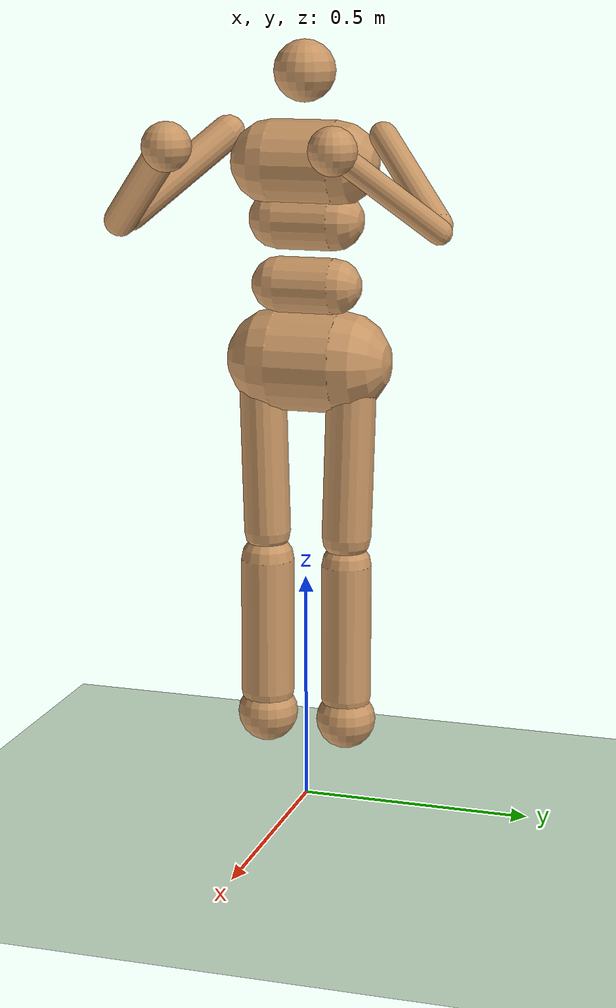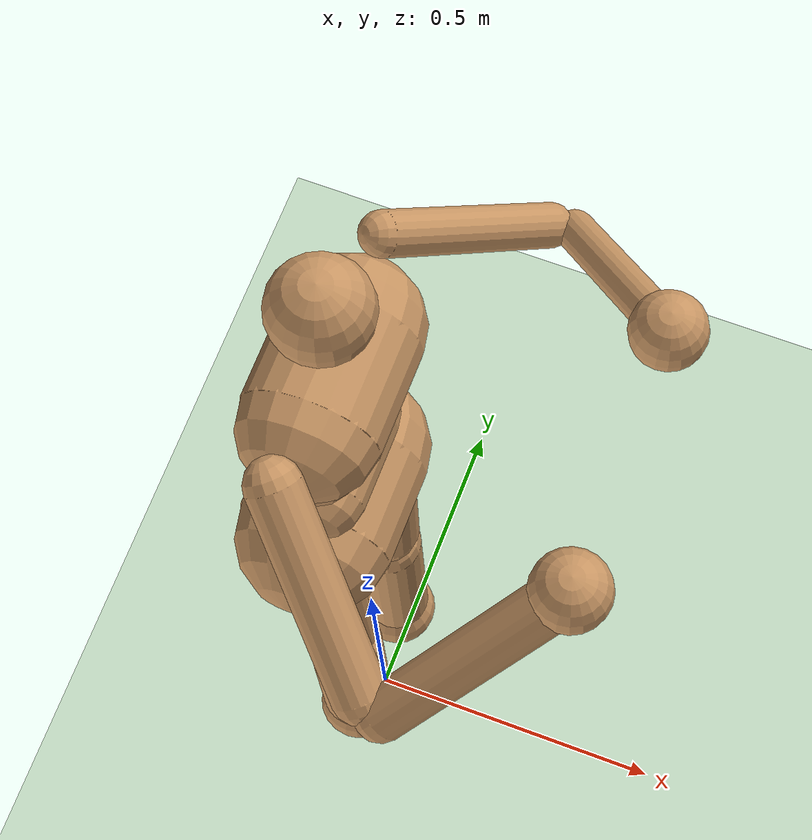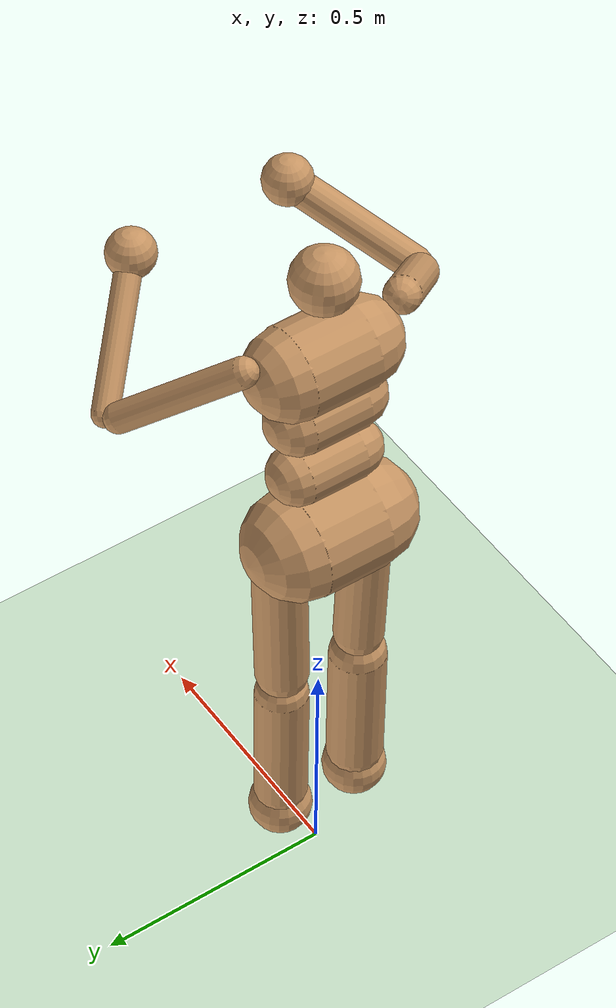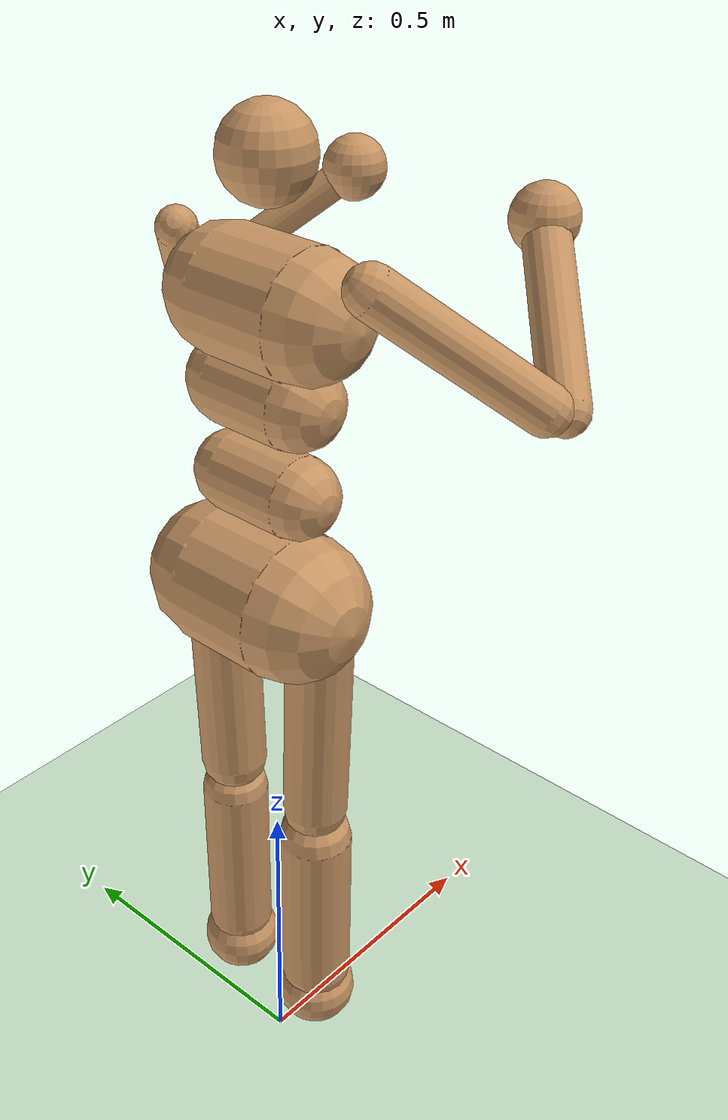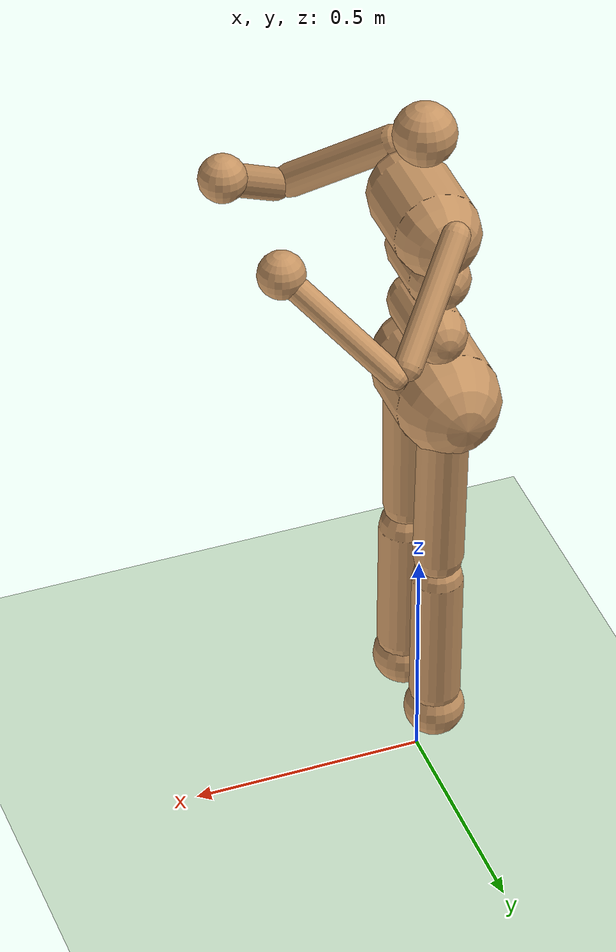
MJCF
<?xml version="1.0" encoding="utf-8"?>
<mujoco model="humanoid">
	<compiler angle="degree" inertiafromgeom="true"></compiler>
	<default>
		<joint armature="1" damping="0.8335073199726031" limited="true"></joint>
		<geom conaffinity="1" condim="1" contype="1" margin="0.001" material="geom" rgba="0.8 0.6 .4 1"></geom>
		<motor ctrllimited="true" ctrlrange="-.4 .4"></motor>
	</default>
	<option integrator="RK4" iterations="50" solver="PGS" timestep="0.003"></option>
	<size nkey="5" nuser_geom="1"></size>
	<visual>
		<map fogend="5" fogstart="3"></map>
	</visual>
	<asset>
		<texture builtin="gradient" height="100" rgb1=".4 .5 .6" rgb2="0 0 0" type="skybox" width="100"></texture>
		<texture builtin="flat" height="1278" mark="cross" markrgb="1 1 1" name="texgeom" random="0.01" rgb1="0.8 0.6 0.4" rgb2="0.8 0.6 0.4" type="cube" width="127"></texture>
		<texture builtin="checker" height="100" name="texplane" rgb1="0 0 0" rgb2="0.8 0.8 0.8" type="2d" width="100"></texture>
		<material name="MatPlane" reflectance="0.5" shininess="1" specular="1" texrepeat="60 60" texture="texplane"></material>
		<material name="geom" texture="texgeom" texuniform="true"></material>
	</asset>
	<worldbody>
		<light cutoff="100" diffuse="1 1 1" dir="-0 0 -1.3" directional="true" exponent="1" pos="0 0 1.3" specular=".1 .1 .1"></light>
		<geom condim="3" friction="1.1460372132007846 0.08517830670670701 0.08182723504306567" material="MatPlane" name="floor" pos="0 0 0" rgba="0.8 0.9 0.8 1" size="22.775412915179857 23.92405164565608 0.1283495274524702" type="plane"></geom>
		<body name="torso" pos="0 0 1.4">
			<camera name="track" mode="trackcom" pos="0 -4 0" xyaxes="1 0 0 0 0 1"></camera>
			<joint armature="0" damping="0.0" limited="false" name="root" pos="0 0 0" stiffness="0.0" type="free"></joint>
			<geom fromto="0 -.07 0 0 .07 0" name="torso1" size="0.0904604699190533" type="capsule"></geom>
			<geom name="head" pos="0 0 .19" size="0.06532914539981358" type="sphere" user="258"></geom>
			<geom fromto="-.01 -.06 -.12 -.01 .06 -.12" name="uwaist" size="0.06524279404277601" type="capsule"></geom>
			<body name="lwaist" pos="-.01 0 -0.260" quat="1.000 0 -0.002 0">
				<geom fromto="0 -.06 0 0 .06 0" name="lwaist" size="0.06023330644360139" type="capsule"></geom>
				<joint armature="0.02" axis="0 0 1" damping="3.9242748768979423" name="abdomen_z" pos="0 0 0.065" range="-45 45" stiffness="23.57238639527783" type="hinge"></joint>
				<joint armature="0.02" axis="0 1 0" damping="4.82153648325638" name="abdomen_y" pos="0 0 0.065" range="-75 30" stiffness="9.940061564879489" type="hinge"></joint>
				<body name="pelvis" pos="0 0 -0.165" quat="1.000 0 -0.002 0">
					<joint armature="0.02" axis="1 0 0" damping="4.26938605472726" name="abdomen_x" pos="0 0 0.1" range="-35 35" stiffness="7.88310758160999" type="hinge"></joint>
					<geom fromto="-.02 -.07 0 -.02 .07 0" name="butt" size="0.11106209059065561" type="capsule"></geom>
					<body name="right_thigh" pos="0 -0.1 -0.04">
						<joint armature="0.01" axis="1 0 0" damping="5.566092225923502" name="right_hip_x" pos="0 0 0" range="-25 5" stiffness="12.619422919042718" type="hinge"></joint>
						<joint armature="0.01" axis="0 0 1" damping="5.592758384395672" name="right_hip_z" pos="0 0 0" range="-60 35" stiffness="8.07799190926332" type="hinge"></joint>
						<joint armature="0.0080" axis="0 1 0" damping="3.567469652967323" name="right_hip_y" pos="0 0 0" range="-110 20" stiffness="24.031186410604345" type="hinge"></joint>
						<geom fromto="0 0 0 0 0.01 -.34" name="right_thigh1" size="0.05065317844183155" type="capsule"></geom>
						<body name="right_shin" pos="0 0.01 -0.403">
							<joint armature="0.0060" axis="0 -1 0" name="right_knee" pos="0 0 .02" range="-160 -2" type="hinge"></joint>
							<geom fromto="0 0 0 0 0 -.3" name="right_shin1" size="0.058266892560607096" type="capsule"></geom>
							<body name="right_foot" pos="0 0 -0.45">
								<geom name="right_foot" pos="0 0 0.1" size="0.06614351838795303" type="sphere" user="0"></geom>
							</body>
						</body>
					</body>
					<body name="left_thigh" pos="0 0.1 -0.04">
						<joint armature="0.01" axis="-1 0 0" damping="4.458490443989057" name="left_hip_x" pos="0 0 0" range="-25 5" stiffness="9.471215129931178" type="hinge"></joint>
						<joint armature="0.01" axis="0 0 -1" damping="5.92997868048921" name="left_hip_z" pos="0 0 0" range="-60 35" stiffness="8.852990789601128" type="hinge"></joint>
						<joint armature="0.01" axis="0 1 0" damping="6.481946510238837" name="left_hip_y" pos="0 0 0" range="-110 20" stiffness="20.15113400280206" type="hinge"></joint>
						<geom fromto="0 0 0 0 -0.01 -.34" name="left_thigh1" size="0.05346152532765209" type="capsule"></geom>
						<body name="left_shin" pos="0 -0.01 -0.403">
							<joint armature="0.0060" axis="0 -1 0" name="left_knee" pos="0 0 .02" range="-160 -2" stiffness="0.8399195518683887" type="hinge"></joint>
							<geom fromto="0 0 0 0 0 -.3" name="left_shin1" size="0.054301263209870936" type="capsule"></geom>
							<body name="left_foot" pos="0 0 -0.45">
								<geom name="left_foot" type="sphere" size="0.06490430342919434" pos="0 0 0.1" user="0"></geom>
							</body>
						</body>
					</body>
				</body>
			</body>
			<body name="right_upper_arm" pos="0 -0.17 0.06">
				<joint armature="0.0068" axis="2 1 1" name="right_shoulder1" pos="0 0 0" range="-85 60" stiffness="0.7607809235977874" type="hinge"></joint>
				<joint armature="0.0051" axis="0 -1 1" name="right_shoulder2" pos="0 0 0" range="-85 60" stiffness="1.068895591802325" type="hinge"></joint>
				<geom fromto="0 0 0 .16 -.16 -.16" name="right_uarm1" size="0.035987510681763486 0.1739901233275917" type="capsule"></geom>
				<body name="right_lower_arm" pos=".18 -.18 -.18">
					<joint armature="0.0028" axis="0 -1 1" name="right_elbow" pos="0 0 0" range="-90 50" stiffness="0.0" type="hinge"></joint>
					<geom fromto="0.01 0.01 0.01 .17 .17 .17" name="right_larm" size="0.034223911602972105" type="capsule"></geom>
					<geom name="right_hand" pos=".18 .18 .18" size="0.050074406908517624" type="sphere"></geom>
					<camera pos="0 0 0"></camera>
				</body>
			</body>
			<body name="left_upper_arm" pos="0 0.17 0.06">
				<joint armature="0.0068" axis="2 -1 1" name="left_shoulder1" pos="0 0 0" range="-60 85" stiffness="0.7770864092344133" type="hinge"></joint>
				<joint armature="0.0051" axis="0 1 1" name="left_shoulder2" pos="0 0 0" range="-60 85" stiffness="0.7121467370329657" type="hinge"></joint>
				<geom fromto="0 0 0 .16 .16 -.16" name="left_uarm1" size="0.029540920123312393 0.1958934207464495" type="capsule"></geom>
				<body name="left_lower_arm" pos=".18 .18 -.18">
					<joint armature="0.0028" axis="0 -1 -1" name="left_elbow" pos="0 0 0" range="-90 50" stiffness="0.0" type="hinge"></joint>
					<geom fromto="0.01 -0.01 0.01 .17 -.17 .17" name="left_larm" size="0.026084891294540866" type="capsule"></geom>
					<geom name="left_hand" pos=".18 -.18 .18" size="0.04875080356574009" type="sphere"></geom>
				</body>
			</body>
		</body>
	</worldbody>
	<tendon>
		<fixed name="left_hipknee">
			<joint coef="-1" joint="left_hip_y"></joint>
			<joint coef="1" joint="left_knee"></joint>
		</fixed>
		<fixed name="right_hipknee">
			<joint coef="-1" joint="right_hip_y"></joint>
			<joint coef="1" joint="right_knee"></joint>
		</fixed>
	</tendon>
	<actuator>
		<motor gear="100" joint="abdomen_y" name="abdomen_y"></motor>
		<motor gear="100" joint="abdomen_z" name="abdomen_z"></motor>
		<motor gear="100" joint="abdomen_x" name="abdomen_x"></motor>
		<motor gear="100" joint="right_hip_x" name="right_hip_x"></motor>
		<motor gear="100" joint="right_hip_z" name="right_hip_z"></motor>
		<motor gear="300" joint="right_hip_y" name="right_hip_y"></motor>
		<motor gear="200" joint="right_knee" name="right_knee"></motor>
		<motor gear="100" joint="left_hip_x" name="left_hip_x"></motor>
		<motor gear="100" joint="left_hip_z" name="left_hip_z"></motor>
		<motor gear="300" joint="left_hip_y" name="left_hip_y"></motor>
		<motor gear="200" joint="left_knee" name="left_knee"></motor>
		<motor gear="25" joint="right_shoulder1" name="right_shoulder1"></motor>
		<motor gear="25" joint="right_shoulder2" name="right_shoulder2"></motor>
		<motor gear="25" joint="right_elbow" name="right_elbow"></motor>
		<motor gear="25" joint="left_shoulder1" name="left_shoulder1"></motor>
		<motor gear="25" joint="left_shoulder2" name="left_shoulder2"></motor>
		<motor gear="25" joint="left_elbow" name="left_elbow"></motor>
	</actuator>
</mujoco>
